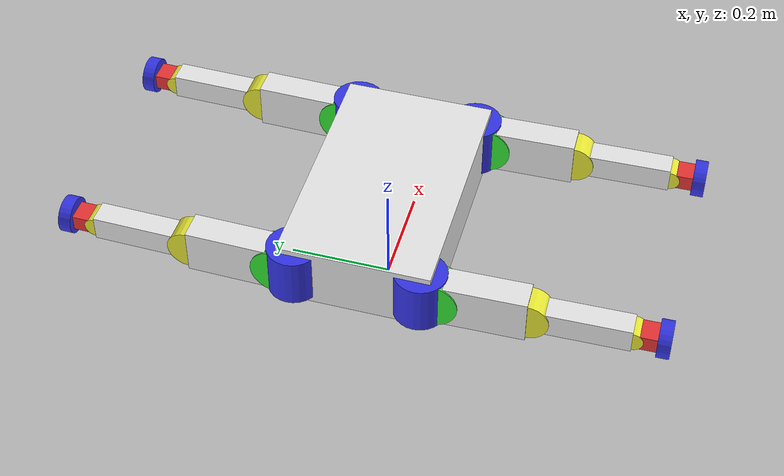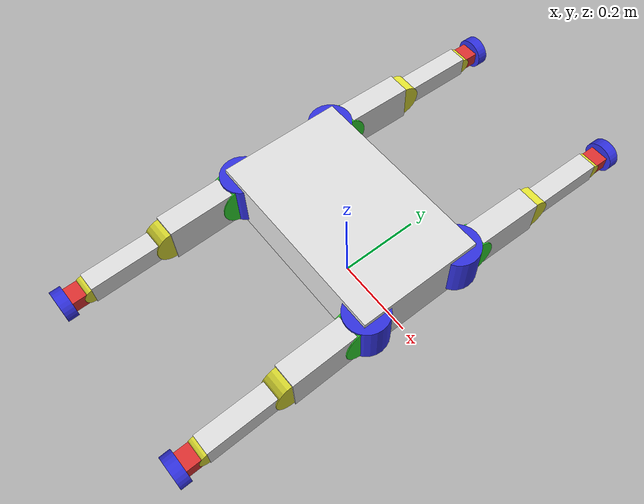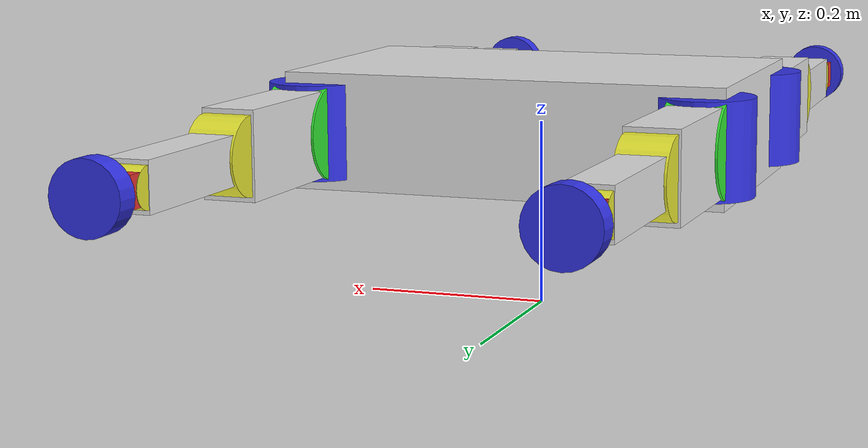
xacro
<robot name="rollerWalker" xmlns:xacro="http://ros.org/wiki/xacro">
    <!-- 色の定義 -->
    <material name="red">
        <color rgba="0.9 0.2 0.2 1.0"/>
    </material>

    <material name="green">
        <color rgba="0.2 0.9 0.2 1.0"/>
    </material>

    <material name="blue">
        <color rgba="0.2 0.2 0.9 1.0"/>
    </material>

    <material name="yellow">
        <color rgba="0.9 0.9 0.2 1.0"/>
    </material>
    <material name="white">
        <color rgba="0.9 0.9 0.9 1.0"/>
    </material>

    <!-- 各パラメータ -->

    <!-- ボディ関連 -->
    <xacro:property name="body_z" value="0.2" /> <!-- ボディの高さ -->
    <xacro:property name="body_length" value="0.47" />
    <xacro:property name="body_width" value="0.29" />
    <xacro:property name="body_thickness" value="0.123" />

    <!-- 各リンクの長さ -->
    <xacro:property name="l2" value="0.2" />
    <xacro:property name="l3" value="0.243" />
    <xacro:property name="l4" value="0.031" />

    <!-- タイヤ関連 -->
    <xacro:property name="wheel_radius" value="0.035" />
    <xacro:property name="wheel_thickness" value="0.024" />

    <!-- ジョイント1関連 -->
    <xacro:property name="joint_1_radius" value="0.05" />
    <xacro:property name="joint_1_thickness" value="0.1" />

    <!-- ジョイント2関連 -->
    <xacro:property name="joint_2_radius" value="0.05" />
    <xacro:property name="joint_2_thickness" value="0.060" />

    <!-- ジョイント3関連 -->
    <xacro:property name="joint_3_radius" value="0.04" />
    <xacro:property name="joint_3_thickness" value="0.05" />

    <!-- ジョイント4関連 -->
    <xacro:property name="joint_4_radius" value="0.02" />
    <xacro:property name="joint_4_thickness" value="0.044" />

    <!-- 各足の長さはlink_n_xの値を変えれば良い -->
    <!-- リンク2関連 -->
    <xacro:property name="link_2_x" value="0.2" />
    <xacro:property name="link_2_y" value="0.055" />
    <xacro:property name="link_2_z" value="0.09" />

    <!-- リンク3関連 -->
    <xacro:property name="link_3_x" value="0.188" />
    <xacro:property name="link_3_y" value="0.045" />
    <xacro:property name="link_3_z" value="0.049" />

    <!-- リンク4関連 -->
    <xacro:property name="link_4_x" value="0.044" />
    <xacro:property name="link_4_y" value="0.043" />
    <xacro:property name="link_4_z" value="0.031" />

    <!-- 脚のマクロ -->
    <xacro:macro name="leg_macro" params="leg_posi">
        <!-- ジョイント１とジョイント２の設定 -->
        <joint name="joint_1_${leg_posi}_to_joint_2_${leg_posi}" type="revolute">
            <axis xyz="0 0 1"/>
            <parent link="joint_1_${leg_posi}"/>
            <child  link="joint_2_${leg_posi}"/>
            <origin rpy="1.57070 0 0" xyz="0 0 0"/>
            <limit lower="-1.5" upper="1.5" effort="0" velocity="0"/>
        </joint>

        <!-- ジョイント２の描画 -->
        <link name = "joint_2_${leg_posi}">
            <visual>
                <geometry>
                    <cylinder radius="${joint_2_radius}" length="${joint_2_thickness}"/>
                </geometry>
                <origin xyz="${joint_1_radius/2} 0 0.0" rpy="0 0 0"/>
                <material name = "green"/>
            </visual>
        </link>

        <!-- ジョイント２とリンク２の描画 -->
        <joint name="joint_2_${leg_posi}_to_link_2_${leg_posi}" type="fixed">
            <axis xyz="0 0 1"/>
            <parent link="joint_2_${leg_posi}"/>
            <child  link="link_2_${leg_posi}"/>
            <origin rpy="-1.57070 0 0" xyz="0 0 0"/>
        </joint>

        <link name = "link_2_${leg_posi}">
            <visual>
                <geometry>
                    <box size = "${link_2_x} ${link_2_y} ${link_2_z}" />
                </geometry>
                <origin xyz="${link_2_x/2} 0 0.0" rpy="0 0 0"/>
                <material name = "white"/>
            </visual>
        </link>

        <!-- リンク2とジョイント3の設定 -->
        <joint name="link_2_${leg_posi}_to_joint_3_${leg_posi}" type="revolute">
            <axis xyz="0 0 1"/>
            <parent link="link_2_${leg_posi}"/>
            <child  link="joint_3_${leg_posi}"/>
            <origin rpy="1.57070 0 0" xyz="${link_2_x} 0 0"/>
            <limit lower="-2.0" upper="1.5" effort="0" velocity="0"/>
        </joint>

        <!-- ジョイント3の描画 -->
        <link name = "joint_3_${leg_posi}">
            <visual>
                <geometry>
                    <cylinder radius="${joint_3_radius}" length="${joint_3_thickness}"/>
                </geometry>
                <origin xyz="0 0 0.0" rpy="0 0 0"/>
                <material name = "yellow"/>
            </visual>
        </link>

         <!-- ジョイント3とリンク3の描画 -->
        <joint name="joint_3_${leg_posi}_to_link_3_${leg_posi}" type="fixed">
            <axis xyz="0 0 1"/>
            <parent link="joint_3_${leg_posi}"/>
            <child  link="link_3_${leg_posi}"/>
            <origin rpy="-1.57070 0 0" xyz="0 0 0"/>
        </joint>

        <link name = "link_3_${leg_posi}">
            <visual>
                <geometry>
                    <box size = "${link_3_x} ${link_3_y} ${link_3_z}" />
                </geometry>
                <origin xyz="${link_3_x/2} 0 0.0" rpy="0 0 0"/>
                <material name = "white"/>
            </visual>
        </link>

         <!-- リンク3とジョイント4の設定 -->
        <joint name="link_3_${leg_posi}_to_joint_4_${leg_posi}" type="revolute">
            <axis xyz="0 0 1"/>
            <parent link="link_3_${leg_posi}"/>
            <child  link="joint_4_${leg_posi}"/>
            <origin rpy="1.57070 0 0" xyz="${link_3_x} 0 0"/>
            <limit lower="-2.0" upper="1.5" effort="0" velocity="0"/>
        </joint>

        <!-- ジョイント4の描画 -->
        <link name = "joint_4_${leg_posi}">
            <visual>
                <geometry>
                    <cylinder radius="${joint_4_radius}" length="${joint_4_thickness}"/>
                </geometry>
                <origin xyz="0 0 0.0" rpy="0 0 0"/>
                <material name = "yellow"/>
            </visual>
        </link>

        <!-- ジョイント4とリンク4の描画 -->
        <joint name="joint_4_${leg_posi}_to_link_4_${leg_posi}" type="fixed">
            <axis xyz="0 0 1"/>
            <parent link="joint_4_${leg_posi}"/>
            <child  link="link_4_${leg_posi}"/>
            <origin rpy="-1.57070 0 0" xyz="0 0 0"/>
        </joint>

        <link name = "link_4_${leg_posi}">
            <visual>
                <geometry>
                    <box size = "${link_4_x} ${link_4_y} ${link_4_z}" />
                </geometry>
                <origin xyz="${link_4_x/2} 0 0.0" rpy="0 0 0"/>
                <material name = "red"/>
            </visual>
        </link>

        <!-- リンク4とホイールの設定 -->
        <joint name="link_4_${leg_posi}_to_wheel_${leg_posi}" type="continuous">
            <axis xyz="0 0 1"/>
            <parent link="link_4_${leg_posi}"/>
            <child  link="wheel_${leg_posi}"/>
            <origin rpy="0 1.57070 0" xyz="${link_4_x + wheel_thickness/2} 0 0"/>
        </joint>

        <!-- ホイールの描画 -->
        <link name = "wheel_${leg_posi}">
            <visual>
                <geometry>
                    <cylinder radius="${wheel_radius}" length="${wheel_thickness}"/>
                </geometry>
                <origin xyz="0 0 0.0" rpy="0 0 0"/>
                <material name = "blue"/>
            </visual>
        </link>

    </xacro:macro>

    <!-- 本体の描画 -->
    <link name="base_link"/>

    <joint name="base_to_body" type="fixed">
        <parent link="base_link"/>
        <child  link="body"/>
        <origin xyz="0 0 ${body_z}" rpy="0 0 0"/>
    </joint>

    <!-- ボディ -->
    <link name = "body">
        <visual>
            <geometry>
                <box size = "${body_length} ${body_width} ${body_thickness}" />
            </geometry>
            <origin xyz="0 0 0.0" rpy="0 0 0"/>
            <material name = "white"/>
        </visual>
    </link>

    <!-- ジョイント1_LF -->
    <joint name="body_to_joint_1_lf" type="revolute">
        <parent link="body"/>
        <child  link="joint_1_lf"/>
        <axis xyz="0 0 1"/>
        <origin xyz="${body_length/2 - joint_1_radius/2} ${body_width/2 - joint_1_radius/2} 0.0" rpy="0 0 0"/>
        <limit lower="0.1" upper="3" effort="0" velocity="0"/>
    </joint>

     <link name = "joint_1_lf">
        <visual>
            <geometry>
                <cylinder radius="${joint_1_radius}" length="${joint_1_thickness}"/>
            </geometry>
            <origin xyz="0 0 0.0" rpy="0 0 0"/>
            <material name = "blue"/>
        </visual>
    </link>

    <!-- ジョイント1_LR -->
    <joint name="body_to_joint_1_lr" type="revolute">
        <parent link="body"/>
        <child  link="joint_1_lr"/>
        <axis xyz="0 0 1"/>
        <origin xyz="${-(body_length/2 - joint_1_radius/2)} ${body_width/2 - joint_1_radius/2} 0.0" rpy="0 0 0"/>
        <limit lower="0.1" upper="3" effort="0" velocity="0"/>
    </joint>

     <link name = "joint_1_lr">
        <visual>
            <geometry>
                <cylinder radius="${joint_1_radius}" length="${joint_1_thickness}"/>
            </geometry>
            <origin xyz="0 0 0.0" rpy="0 0 0"/>
            <material name = "blue"/>
        </visual>
    </link>

   <!-- ジョイント1_RR -->
    <joint name="body_to_joint_1_rr" type="revolute">
        <parent link="body"/>
        <child  link="joint_1_rr"/>
        <axis xyz="0 0 1"/>
        <origin xyz="${-(body_length/2 - joint_1_radius/2)} ${-(body_width/2 - joint_1_radius/2)} 0.0" rpy="0 0 0"/>
        <limit lower="-3" upper="-0.1" effort="0" velocity="0"/>
    </joint>

     <link name = "joint_1_rr">
        <visual>
            <geometry>
                <cylinder radius="${joint_1_radius}" length="${joint_1_thickness}"/>
            </geometry>
            <origin xyz="0 0 0.0" rpy="0 0 0"/>
            <material name = "blue"/>
        </visual>
    </link>

    <!-- ジョイント1_RF -->
    <joint name="body_to_joint_1_rf" type="revolute">
        <parent link="body"/>
        <child  link="joint_1_rf"/>
        <axis xyz="0 0 1"/>
        <origin xyz="${body_length/2 - joint_1_radius/2} ${-(body_width/2 - joint_1_radius/2)} 0.0" rpy="0 0 0"/>
        <limit lower="-3" upper="-0.1" effort="0" velocity="0"/>
    </joint>

     <link name = "joint_1_rf">
        <visual>
            <geometry>
                <cylinder radius="${joint_1_radius}" length="${joint_1_thickness}"/>
            </geometry>
            <origin xyz="0 0 0.0" rpy="0 0 0"/>
            <material name = "blue"/>
        </visual>
    </link>

    <!-- 脚のマクロの呼び出し -->
    <xacro:leg_macro leg_posi="lf"/>
    <xacro:leg_macro leg_posi="lr"/>
    <xacro:leg_macro leg_posi="rr"/>
    <xacro:leg_macro leg_posi="rf"/>
</robot>
